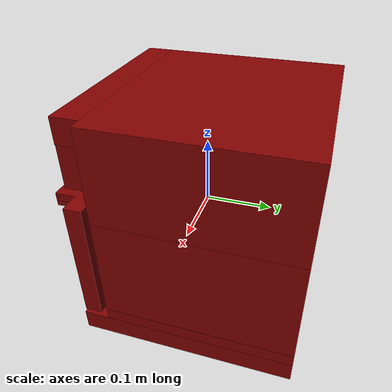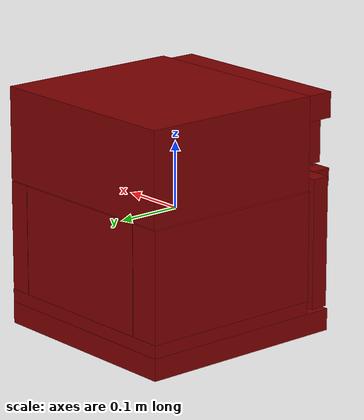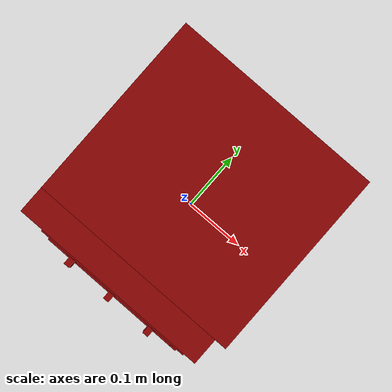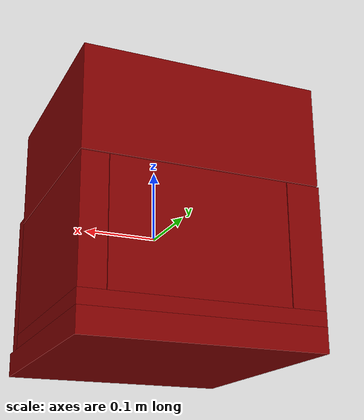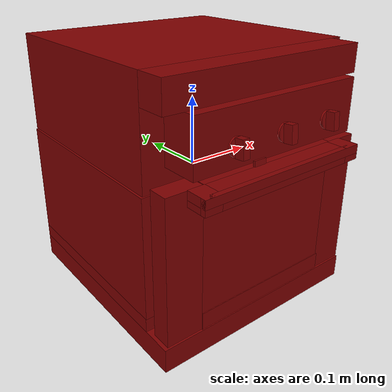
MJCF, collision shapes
<?xml version='1.0' encoding='UTF-8'?>
<mujoco model="model">
  <compiler angle="radian"/>
  <asset>
    <mesh file="visuals/Body001.obj" name="Body001_vis"/>
    <mesh file="visuals/Button001.obj" name="Button001_vis"/>
    <mesh file="visuals/Container001.obj" name="Container001_vis"/>
    <mesh file="visuals/Container002.obj" name="Container002_vis"/>
    <mesh file="visuals/Container003.obj" name="Container003_vis"/>
    <mesh file="visuals/Door001.obj" name="Door001_vis"/>
    <mesh file="visuals/Door001_Clear.obj" name="Door001_Clear_vis"/>
    <mesh file="visuals/Knob001.obj" name="Knob001_vis"/>
    <mesh file="visuals/Knob002.obj" name="Knob002_vis"/>
    <mesh file="visuals/Knob003.obj" name="Knob003_vis"/>
    <texture file="visuals/T_BC001.png" name="Body001_material" type="2d"/>
    <material name="Body001_material" rgba="1 1 1 1.0" texture="Body001_material" shininess="0.46335369348526" specular="1"/>
    <texture file="visuals/T_BC001.png" name="Button001_material" type="2d"/>
    <material name="Button001_material" rgba="1 1 1 1.0" texture="Button001_material" shininess="0.46335369348526" specular="0.3103448502657381"/>
    <texture file="visuals/T_BC001.png" name="Container001_material" type="2d"/>
    <material name="Container001_material" rgba="1 1 1 1.0" texture="Container001_material" shininess="0.46335369348526" specular="2"/>
    <texture file="visuals/T_BC001.png" name="Container002_material" type="2d"/>
    <material name="Container002_material" rgba="1 1 1 1.0" texture="Container002_material" shininess="0.46335369348526" specular="2"/>
    <texture file="visuals/T_BC001.png" name="Container003_material" type="2d"/>
    <material name="Container003_material" rgba="1 1 1 1.0" texture="Container003_material" shininess="0.46335369348526" specular="2"/>
    <texture file="visuals/T_BC001.png" name="Door001_material" type="2d"/>
    <material name="Door001_material" rgba="1 1 1 1.0" texture="Door001_material" shininess="0.46335369348526" specular="0.5"/>
    <texture file="visuals/T_BC001.png" name="Door001_Clear_material" type="2d"/>
    <material name="Door001_Clear_material" rgba="1 1 1 0.800000011920929" texture="Door001_Clear_material" shininess="0.46335369348526" specular="0.3103448502657381"/>
    <texture file="visuals/T_BC001.png" name="Knob001_material" type="2d"/>
    <material name="Knob001_material" rgba="1 1 1 1.0" texture="Knob001_material" shininess="0.46335369348526" specular="0.3103448502657381"/>
    <texture file="visuals/T_BC001.png" name="Knob002_material" type="2d"/>
    <material name="Knob002_material" rgba="1 1 1 1.0" texture="Knob002_material" shininess="0.46335369348526" specular="0.3103448502657381"/>
    <texture file="visuals/T_BC001.png" name="Knob003_material" type="2d"/>
    <material name="Knob003_material" rgba="1 1 1 1.0" texture="Knob003_material" shininess="0.46335369348526" specular="0.3103448502657381"/>
  </asset>
  <default>
    <default class="visual">
      <geom conaffinity="0" contype="0" group="1" type="mesh"/>
    </default>
    <default class="collision">
      <geom group="0" rgba="0.5 0 0 0.5"/>
    </default>
    <default class="spawn">
      <geom group="0" rgba="1 1 1 0.5" contype="0" conaffinity="0"/>
      <site group="0" rgba="1 1 1 0.5"/>
    </default>
    <default class="region">
      <geom group="1" conaffinity="0" contype="0" rgba="0 1 0 0"/>
    </default>
  </default>
  <worldbody>
    <body>
      <body name="object">
        <geom mesh="Body001_vis" type="mesh" solimp="0.998 0.998 0.001" solref="0.001 1" density="100" friction="0.95 0.3 0.1" class="visual" material="Body001_material"/>
        <geom class="collision" type="box" pos="0.000780 0.030345 0.109925" size="0.16061347723007202 0.14468711614608765 0.07012737542390823" quat="1.0 0.0 0.0 0.0"/>
        <geom class="collision" type="box" pos="-0.137577 0.030345 -0.044540" size="0.02375228889286518 0.1446872055530548 0.08284192532300949" quat="1.0 0.0 0.0 0.0"/>
        <geom class="collision" type="box" pos="0.143967 0.030345 -0.044540" size="0.01742846518754959 0.14468730986118317 0.08284202963113785" quat="1.0 0.0 0.0 0.0"/>
        <geom class="collision" type="box" pos="0.000288 0.010473 -0.163519" size="0.16161443293094635 0.16455820202827454 0.01666225492954254" quat="1.0 0.0 0.0 0.0"/>
        <geom class="collision" type="box" pos="0.006494 0.140180 -0.044540" size="0.11938363313674927 0.03485395759344101 0.08284222334623337" quat="1.0 0.0 0.0 0.0"/>
        <geom class="collision" type="box" pos="0.000545 -0.139501 0.103502" size="0.1298017054796219 0.02530284784734249 0.03628608584403992" quat="1.0 0.0 0.0 0.0"/>
        <geom class="collision" type="box" pos="-0.008158 -0.134620 0.160787" size="0.15167555212974548 0.020421400666236877 0.019265707582235336" quat="1.0 0.0 0.0 0.0"/>
        <geom class="collision" type="box" pos="0.000288 0.030827 -0.137046" size="0.16161522269248962 0.14420586824417114 0.009902648627758026" quat="1.0 0.0 0.0 0.0"/>
        <body name="Button001">
          <joint axis="0.0 0.9974946975708008 -0.07074242830276489" pos="-0.039324 -0.171251 0.069007" limited="true" name="Button001_joint" range="0.0 0.001" type="slide" damping="1" frictionloss="1" armature=".01" stiffness="0.2" springref="-0.1"/>
          <geom mesh="Button001_vis" type="mesh" solimp="0.998 0.998 0.001" solref="0.001 1" density="100" friction="0.95 0.3 0.1" class="visual" material="Button001_material"/>
          <geom class="collision" type="box" pos="-0.039368 -0.171318 0.069089" size="0.008868260309100151 0.0014868775615468621 0.0035575367510318756" quat="0.9989315271377563 -0.04621449112892151 -0.0 0.0"/>
        </body>
        <body name="Container001">
          <joint axis="0.0 -1.0 0.0" pos="0.005731 -0.002453 -0.022143" limited="true" name="Container001_joint" range="0.0 0.15" type="slide" damping="1" frictionloss="1" armature=".01" stiffness="0.05"/>
          <geom mesh="Container001_vis" type="mesh" solimp="0.998 0.998 0.001" solref="0.001 1" density="100" friction="0.95 0.3 0.1" class="visual" material="Container001_material"/>
          <geom class="collision" type="box" pos="0.005384 -0.002396 -0.016364" size="0.11825599521398544 0.10547793656587601 0.00403330335393548" quat="1.0 0.0 0.0 0.0"/>
          <geom class="collision" type="box" pos="0.005644 0.001194 -0.025210" size="0.09416749328374863 0.0793447196483612 0.004907288588583469" quat="1.0 0.0 0.0 0.0"/>
        </body>
        <body name="Container002">
          <joint axis="0.0 -1.0 0.0" pos="0.005731 -0.002453 -0.097409" limited="true" name="Container002_joint" range="0.0 0.15" type="slide" damping="1" frictionloss="1" armature=".01" stiffness="0.05"/>
          <geom mesh="Container002_vis" type="mesh" solimp="0.998 0.998 0.001" solref="0.001 1" density="100" friction="0.95 0.3 0.1" class="visual" material="Container002_material"/>
          <geom class="collision" type="box" pos="0.005384 -0.002396 -0.092863" size="0.11825652420520782 0.10547840595245361 0.004033319652080536" quat="1.0 0.0 0.0 0.0"/>
          <geom class="collision" type="box" pos="0.005644 0.001194 -0.101709" size="0.09416777640581131 0.07934508472681046 0.004907308612018824" quat="1.0 0.0 0.0 0.0"/>
        </body>
        <body name="Container003">
          <joint axis="0.0 -1.0 0.0" pos="0.005731 -0.002453 -0.067855" limited="true" name="Container003_joint" range="0.0 0.15" type="slide" damping="1" frictionloss="1" armature=".01" stiffness="0.05"/>
          <geom mesh="Container003_vis" type="mesh" solimp="0.998 0.998 0.001" solref="0.001 1" density="100" friction="0.95 0.3 0.1" class="visual" material="Container003_material"/>
          <geom class="collision" type="box" pos="0.005644 0.001194 -0.071730" size="0.094167560338974 0.07934480905532837 0.00490729371085763" quat="1.0 0.0 0.0 0.0"/>
          <geom class="collision" type="box" pos="0.005384 -0.002396 -0.062884" size="0.11825640499591827 0.10547828674316406 0.00403331546112895" quat="1.0 0.0 0.0 0.0"/>
        </body>
        <body name="Door001">
          <joint axis="1.0 0.0 0.0" pos="0.000002 -0.153725 -0.143995" limited="true" name="Door001_joint" range="0.0 1.5707963267948966" type="hinge" damping="1" frictionloss="1" armature=".01" stiffness="0.05"/>
          <geom mesh="Door001_vis" type="mesh" solimp="0.998 0.998 0.001" solref="0.001 1" density="100" friction="0.95 0.3 0.1" class="visual" material="Door001_material"/>
          <geom class="collision" type="box" pos="0.132284 -0.140621 -0.044935" size="0.025965455919504166 0.013554784469306469 0.09866119176149368" quat="1.0 0.0 0.0 0.0"/>
          <geom class="collision" type="box" pos="-0.132047 -0.140621 -0.044935" size="0.025965480133891106 0.013554798439145088 0.09866128116846085" quat="1.0 0.0 0.0 0.0"/>
          <geom class="collision" type="box" pos="0.000841 -0.141223 -0.131636" size="0.10678219050168991 0.014157172292470932 0.011961422860622406" quat="1.0 0.0 0.0 0.0"/>
          <geom class="collision" type="box" pos="0.000841 -0.140621 0.037532" size="0.10678228735923767 0.013554824516177177 0.016924336552619934" quat="1.0 0.0 0.0 0.0"/>
          <geom class="collision" type="box" pos="0.000165 -0.169141 0.048514" size="0.12886179983615875 0.015012511983513832 0.005942168179899454" quat="1.0 0.0 0.0 0.0"/>
          <geom class="collision" type="box" pos="0.000165 -0.180388 0.044267" size="0.12886181473731995 0.0037650850135833025 0.010189743712544441" quat="1.0 0.0 0.0 0.0"/>
          <geom class="collision" type="box" pos="-0.116655 -0.168975 0.044267" size="0.012041772715747356 0.01517821941524744 0.010189744643867016" quat="1.0 0.0 0.0 0.0"/>
          <geom class="collision" type="box" pos="0.116460 -0.168975 0.044267" size="0.012041773647069931 0.015178222209215164 0.010189746506512165" quat="1.0 0.0 0.0 0.0"/>
          <body name="Door001_Clear">
            <geom mesh="Door001_Clear_vis" type="mesh" solimp="0.998 0.998 0.001" solref="0.001 1" density="100" friction="0.95 0.3 0.1" class="visual" material="Door001_Clear_material"/>
            <geom class="collision" type="box" pos="0.000522 -0.151707 -0.049569" size="0.11034350842237473 0.0024680648930370808 0.07375513762235641" quat="1.0 0.0 0.0 0.0"/>
          </body>
        </body>
        <body name="Knob001">
          <joint axis="0.0 0.9961931109428406 -0.08717270940542221" pos="-0.075229 -0.176559 0.096388" limited="true" name="Knob001_joint" range="0.0 4.71238898038469" type="hinge" damping="0.05" armature="0.001"/>
          <geom mesh="Knob001_vis" type="mesh" solimp="0.998 0.998 0.001" solref="0.001 1" density="100" friction="0.95 0.3 0.1" class="visual" material="Knob001_material"/>
          <geom class="collision" type="cylinder" pos="-0.075120 -0.171560 0.095874" size="0.012214718386530876 0.0014650241937488317" quat="0.7384907603263855 0.674263596534729 0.0 0.0"/>
          <geom class="collision" type="box" pos="-0.075076 -0.179148 0.096679" size="0.004723309073597193 0.006342465057969093 0.011634760536253452" quat="0.9989585280418396 -0.04562760144472122 -0.0 0.0"/>
        </body>
        <body name="Knob002">
          <joint axis="0.0 0.9959583282470703 -0.08981510996818542" pos="0.000022 -0.176559 0.096388" limited="true" name="Knob002_joint" range="0.0 5.410520681182422" type="hinge" damping="0.05" armature="0.001"/>
          <geom mesh="Knob002_vis" type="mesh" solimp="0.998 0.998 0.001" solref="0.001 1" density="100" friction="0.95 0.3 0.1" class="visual" material="Knob002_material"/>
          <geom class="collision" type="cylinder" pos="0.000058 -0.171564 0.095874" size="0.012114203535020351 0.0014273510314524174" quat="0.7384907603263855 0.674263596534729 0.0 0.0"/>
          <geom class="collision" type="box" pos="0.000003 -0.179148 0.096679" size="0.004723309073597193 0.006342465057969093 0.011634760536253452" quat="0.9989585280418396 -0.04562760144472122 -0.0 0.0"/>
        </body>
        <body name="Knob003">
          <joint axis="0.0 0.9960722327232361 -0.08854477107524872" pos="0.075060 -0.176559 0.096388" limited="true" name="Knob003_joint" range="0.0 4.71238898038469" type="hinge" damping="0.05" armature="0.001"/>
          <geom mesh="Knob003_vis" type="mesh" solimp="0.998 0.998 0.001" solref="0.001 1" density="100" friction="0.95 0.3 0.1" class="visual" material="Knob003_material"/>
          <geom class="collision" type="cylinder" pos="0.075140 -0.171620 0.095880" size="0.012140058912336826 0.0014937188243493438" quat="0.7384907603263855 0.674263596534729 0.0 0.0"/>
          <geom class="collision" type="box" pos="0.074992 -0.179148 0.096679" size="0.004723309073597193 0.006342465057969093 0.011634760536253452" quat="0.9989585280418396 -0.04562760144472122 -0.0 0.0"/>
        </body>
        <geom class="region" name="reg_main" type="box" pos="4.000000000004e-06 0.014935500000000004 0.0" size="0.162939 0.17118450000000002 0.182033"/>
        <geom class="region" name="reg_int" type="box" pos="0.005472999999999992 -0.0031999999999999945 -0.04321749999999999" size="0.121345 0.110208 0.0831335"/>
      </body>
    </body>
  </worldbody>
  <actuator>
    <motor name="Button001_joint_actuator" joint="Button001_joint" gear="0.5"/>
    <motor name="Container001_joint_actuator" joint="Container001_joint" gear="10"/>
    <motor name="Container002_joint_actuator" joint="Container002_joint" gear="10"/>
    <motor name="Container003_joint_actuator" joint="Container003_joint" gear="10"/>
    <motor name="Door001_joint_actuator" joint="Door001_joint" gear="50"/>
    <motor name="Knob001_joint_actuator" joint="Knob001_joint" gear="50"/>
    <motor name="Knob002_joint_actuator" joint="Knob002_joint" gear="50"/>
    <motor name="Knob003_joint_actuator" joint="Knob003_joint" gear="50"/>
  </actuator>
</mujoco>
